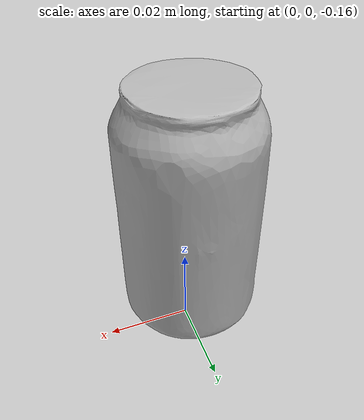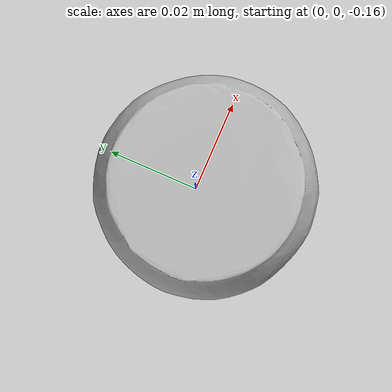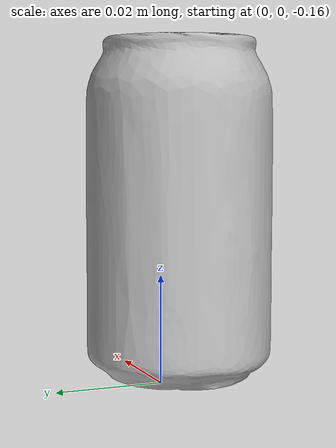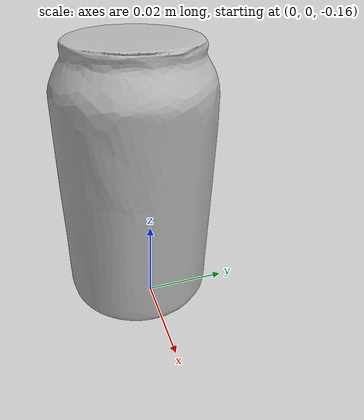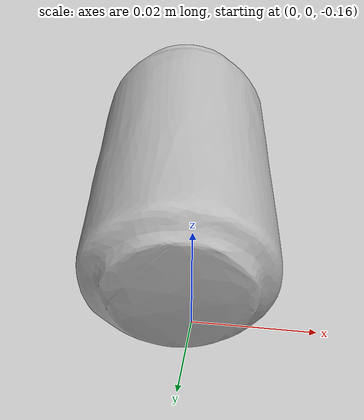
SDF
<sdf version="1.5">
  <model name="coke_can">
    <link name="link">
      <inertial>
        <pose>-0.005 -0.005 0.06 0 0 0</pose>
        <mass>0.390</mass>
        <inertia>
          <ixx>0.001</ixx>
          <ixy>0</ixy>
          <ixz>0</ixz>
          <iyy>0.001</iyy>
          <iyz>0</iyz>
          <izz>0.00035</izz>
        </inertia>
      </inertial>
      <collision name="collision">
        <pose>0 0 -0.25 0 0 0</pose>
        <geometry>
          <mesh>
            <uri>model://coke_can/meshes/coke_can.dae</uri>
            <scale>0.5 0.5 0.5</scale>
          </mesh>
        </geometry>
      </collision>
      <visual name="visual">
        <pose>0 0 -0.25 0 0 0</pose>
        <geometry>
          <mesh>
            <uri>model://coke_can/meshes/coke_can.dae</uri>
            <scale>0.5 0.5 0.5</scale>
          </mesh>
        </geometry>
      </visual>
    </link>
  </model>
</sdf>
